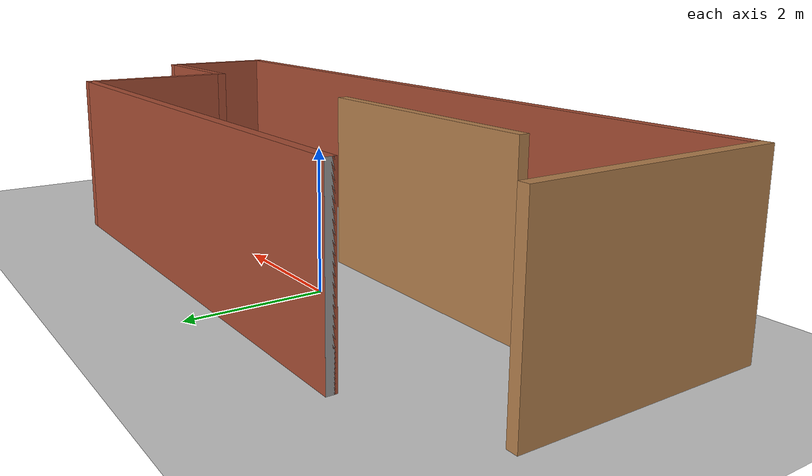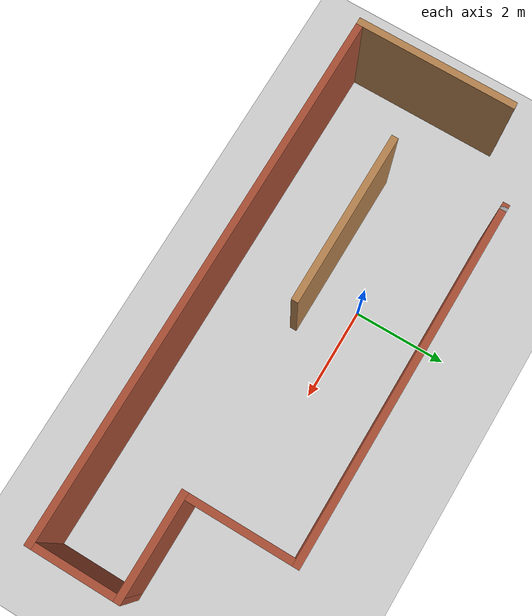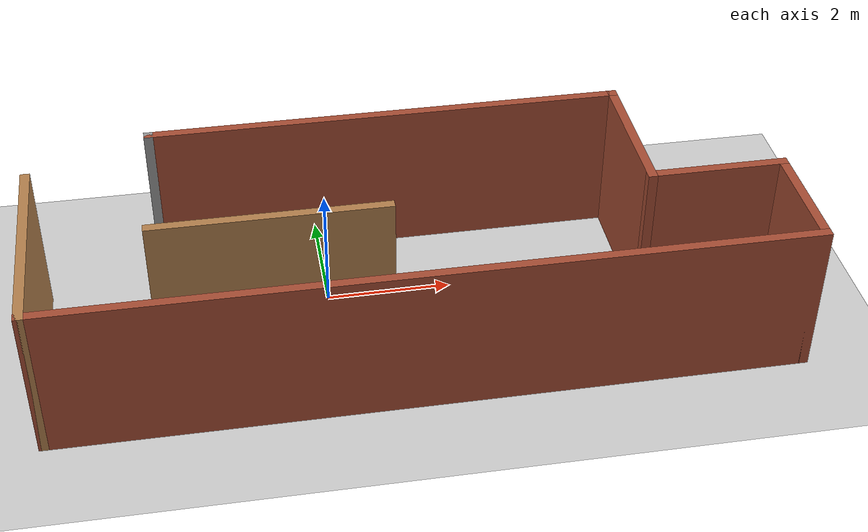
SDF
<sdf version="1.7">
 <world name="default">
  <light name="sun" type="directional">
   <pose>0 0 10 0 -0 0</pose>
   <diffuse>0.8 0.8 0.8 1</diffuse>
   <specular>0.2 0.2 0.2 1</specular>
   <attenuation>
    <range>1000</range>
    <constant>0.9</constant>
    <linear>0.01</linear>
    <quadratic>0.001</quadratic>
   </attenuation>
   <direction>-0.5 0.1 -0.9</direction>
   <spot><inner_angle>0</inner_angle><outer_angle>0</outer_angle><falloff>0</falloff></spot>
  </light>
  <model name="ground_plane">
   <static>1</static>
   <link name="link">
    <collision name="collision">
     <geometry><plane><normal>0 0 1</normal><size>100 100</size></plane></geometry>
     <surface>
      <contact><collide_bitmask>65535</collide_bitmask></contact>
      <friction><ode><mu>100</mu><mu2>50</mu2></ode></friction>
     </surface>
    </collision>
    <visual name="visual">
     <cast_shadows>0</cast_shadows>
     <geometry><plane><normal>0 0 1</normal><size>100 100</size></plane></geometry>
     <material>
      <script><uri>file://media/materials/scripts/gazebo.material</uri><name>Gazebo/Grey</name></script>
     </material>
    </visual>
   </link>
  </model>
  <gravity>0 0 -9.8</gravity>
  <magnetic_field>6e-06 2.3e-05 -4.2e-05</magnetic_field>
  <atmosphere type="adiabatic"/>
  <physics type="ode">
   <max_step_size>0.001</max_step_size>
   <real_time_factor>1</real_time_factor>
   <real_time_update_rate>1000</real_time_update_rate>
  </physics>
  <scene><ambient>0.4 0.4 0.4 1</ambient><background>0.7 0.7 0.7 1</background><shadows>1</shadows></scene>
  <spherical_coordinates>
   <surface_model>EARTH_WGS84</surface_model>
   <latitude_deg>0</latitude_deg>
   <longitude_deg>0</longitude_deg>
   <elevation>0</elevation>
   <heading_deg>0</heading_deg>
  </spherical_coordinates>
  <model name="Untitled111">
   <pose>1.28187 -0.621693 0 0 -0 0</pose>
   <link name="Wall_0">
    <collision name="Wall_0_Collision">
     <geometry><box><size>3.5 0.15 2.5</size></box></geometry>
     <pose>0 0 1.25 0 -0 0</pose>
    </collision>
    <visual name="Wall_0_Visual">
     <pose>0 0 1.25 0 -0 0</pose>
     <geometry><box><size>3.5 0.15 2.5</size></box></geometry>
     <material>
      <script><uri>file://media/materials/scripts/gazebo.material</uri><name>Gazebo/Wood</name></script>
      <ambient>1 1 1 1</ambient>
     </material>
     <meta><layer>0</layer></meta>
    </visual>
    <pose>-5.8 -0.425 0 0 -0 -1.5708</pose>
   </link>
   <link name="Wall_1">
    <collision name="Wall_1_Collision">
     <geometry><box><size>11.75 0.15 2.5</size></box></geometry>
     <pose>0 0 1.25 0 -0 0</pose>
    </collision>
    <visual name="Wall_1_Visual">
     <pose>0 0 1.25 0 -0 0</pose>
     <geometry><box><size>11.75 0.15 2.5</size></box></geometry>
     <material>
      <script><uri>file://media/materials/scripts/gazebo.material</uri><name>Gazebo/Bricks</name></script>
      <ambient>1 1 1 1</ambient>
     </material>
     <meta><layer>0</layer></meta>
    </visual>
    <pose>0 -2.1 0 0 -0 0</pose>
   </link>
   <link name="Wall_2">
    <collision name="Wall_2_Collision">
     <geometry><box><size>2 0.15 2.5</size></box></geometry>
     <pose>0 0 1.25 0 -0 0</pose>
    </collision>
    <visual name="Wall_2_Visual">
     <pose>0 0 1.25 0 -0 0</pose>
     <geometry><box><size>2 0.15 2.5</size></box></geometry>
     <material>
      <script><uri>file://media/materials/scripts/gazebo.material</uri><name>Gazebo/Bricks</name></script>
      <ambient>1 1 1 1</ambient>
     </material>
     <meta><layer>0</layer></meta>
    </visual>
    <pose>5.8 -1.175 0 0 -0 1.5708</pose>
   </link>
   <link name="Wall_3">
    <collision name="Wall_3_Collision">
     <geometry><box><size>2.25 0.15 2.5</size></box></geometry>
     <pose>0 0 1.25 0 -0 0</pose>
    </collision>
    <visual name="Wall_3_Visual">
     <pose>0 0 1.25 0 -0 0</pose>
     <geometry><box><size>2.25 0.15 2.5</size></box></geometry>
     <material>
      <script><uri>file://media/materials/scripts/gazebo.material</uri><name>Gazebo/Bricks</name></script>
      <ambient>1 1 1 1</ambient>
     </material>
     <meta><layer>0</layer></meta>
    </visual>
    <pose>4.75 -0.25 0 0 -0 3.14159</pose>
   </link>
   <link name="Wall_4">
    <collision name="Wall_4_Collision">
     <geometry><box><size>2.5 0.15 2.5</size></box></geometry>
     <pose>0 0 1.25 0 -0 0</pose>
    </collision>
    <visual name="Wall_4_Visual">
     <pose>0 0 1.25 0 -0 0</pose>
     <geometry><box><size>2.5 0.15 2.5</size></box></geometry>
     <material>
      <script><uri>file://media/materials/scripts/gazebo.material</uri><name>Gazebo/Bricks</name></script>
      <ambient>1 1 1 1</ambient>
     </material>
     <meta><layer>0</layer></meta>
    </visual>
    <pose>3.7 0.925 0 0 -0 1.5708</pose>
   </link>
   <link name="Wall_5">
    <collision name="Wall_5_Collision">
     <geometry><box><size>7.75 0.15 2.5</size></box></geometry>
     <pose>0 0 1.25 0 -0 0</pose>
    </collision>
    <visual name="Wall_5_Visual">
     <pose>0 0 1.25 0 -0 0</pose>
     <geometry><box><size>7.75 0.15 2.5</size></box></geometry>
     <material>
      <script><uri>file://media/materials/scripts/gazebo.material</uri><name>Gazebo/Bricks</name></script>
      <ambient>1 1 1 1</ambient>
     </material>
     <meta><layer>0</layer></meta>
    </visual>
    <pose>-0.1 2.1 0 0 -0 3.14159</pose>
   </link>
   <link name="Wall_6">
    <collision name="Wall_6_Collision">
     <geometry><box><size>0.15 0.15 2.5</size></box></geometry>
     <pose>0 0 1.25 0 -0 0</pose>
    </collision>
    <visual name="Wall_6_Visual">
     <pose>0 0 1.25 0 -0 0</pose>
     <geometry><box><size>0.15 0.15 2.5</size></box></geometry>
     <material>
      <script><uri>file://media/materials/scripts/gazebo.material</uri><name>Gazebo/Grey</name></script>
      <ambient>1 1 1 1</ambient>
     </material>
     <meta><layer>0</layer></meta>
    </visual>
    <pose>-3.9 2.1 0 0 -0 0</pose>
   </link>
   <link name="Wall_8">
    <collision name="Wall_8_Collision">
     <geometry><box><size>3.75 0.15 2.5</size></box></geometry>
     <pose>0 0 1.25 0 -0 0</pose>
    </collision>
    <visual name="Wall_8_Visual">
     <pose>0 0 1.25 0 -0 0</pose>
     <geometry><box><size>3.75 0.15 2.5</size></box></geometry>
     <material>
      <script><uri>file://media/materials/scripts/gazebo.material</uri><name>Gazebo/Wood</name></script>
      <ambient>1 1 1 1</ambient>
     </material>
     <meta><layer>0</layer></meta>
    </visual>
    <pose>-2.1911 -0.356767 0 0 -0 0</pose>
   </link>
   <static>1</static>
  </model>
 </world>
</sdf>
